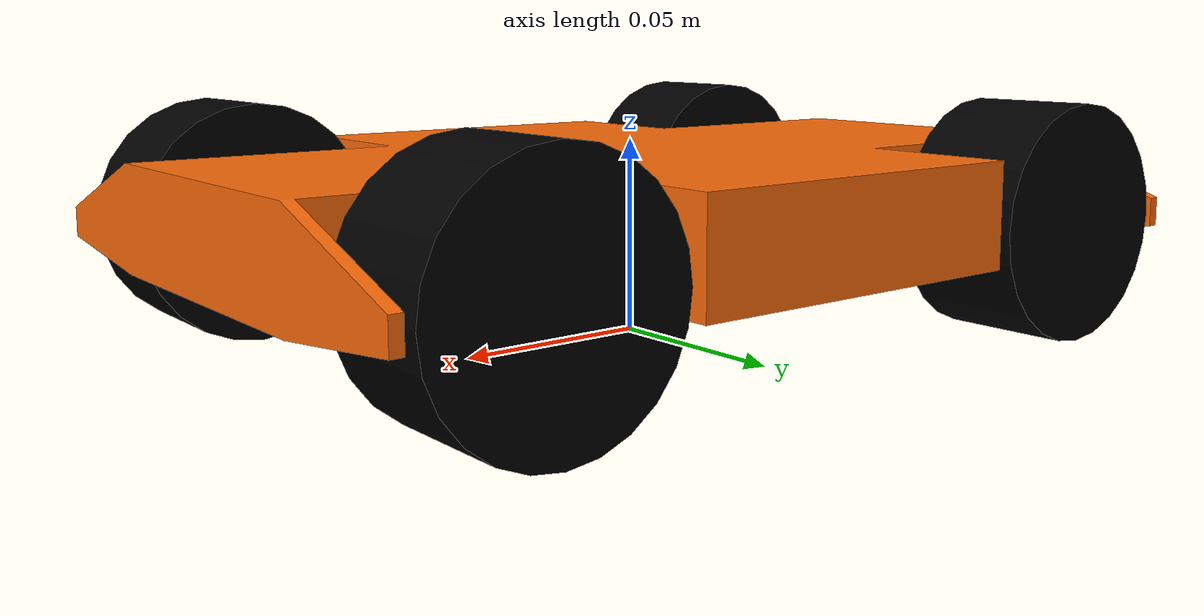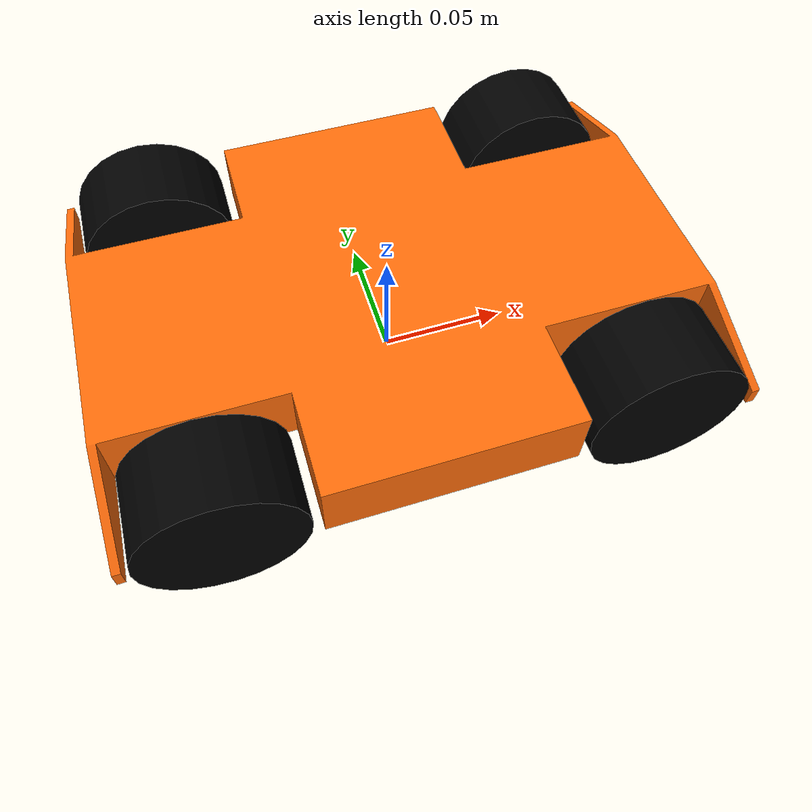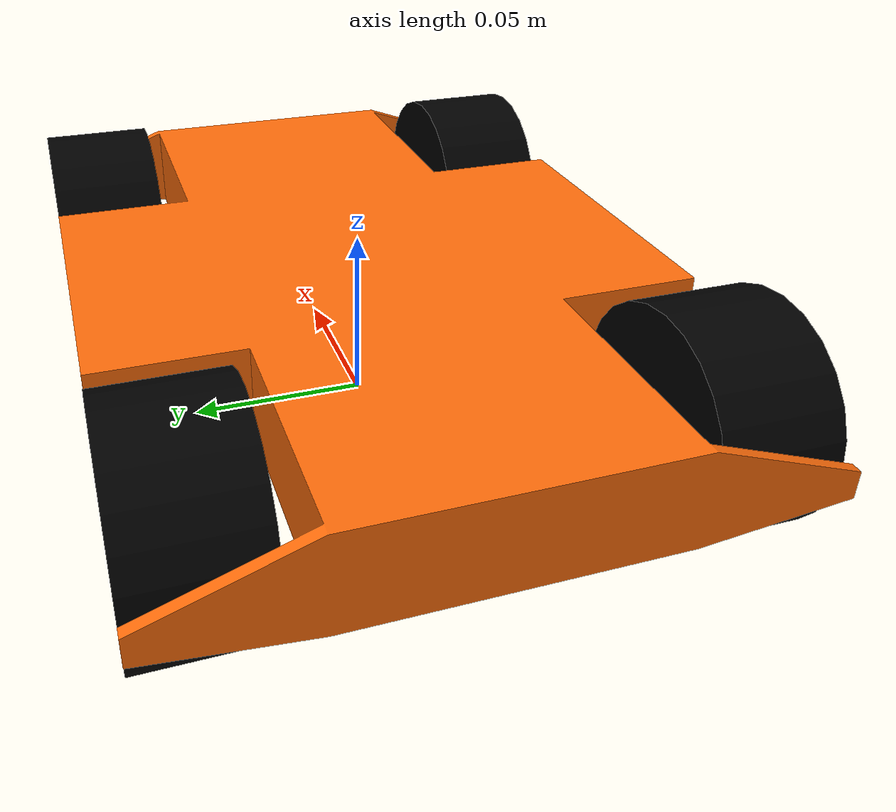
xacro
<?xml version="1.0"?>
<robot name="argon_base" xmlns:xacro="http://ros.org/wiki/xacro">
  <xacro:include filename="$(find argon_description)/urdf/common_properties.xacro"/>

  <xacro:property name="argon_base_center_x" value="0.0" />
  <xacro:property name="argon_base_center_y" value="0.0" />
  <xacro:property name="argon_base_center_z" value="0.035" />

  <xacro:property name="argon_base_wheel_offset_x" value="0.08" />
  <xacro:property name="argon_base_wheel_offset_y" value="0.065" />
  <xacro:property name="argon_base_wheel_offset_z" value="0.005" />
  <xacro:property name="argon_base_wheel_radius" value="0.03" />
  <xacro:property name="argon_base_wheel_length" value="0.032" />

  <link name="base_footprint"/>

  <joint name="base_joint" type="fixed">
    <parent link="base_footprint"/>
    <child link="base_link"/>
    <origin xyz="${argon_base_center_x} ${argon_base_center_y} ${argon_base_center_z}" rpy="0 0 0"/>
  </joint>

  <link name="base_link">
    <visual>
      <origin xyz="0 0 0" rpy="0 0 0" />
      <geometry>
        <mesh filename="package://argon_description/meshes/argon_base.STL" />
      </geometry>
      <material name="orange"/>
    </visual>

    <collision>
      <geometry>
        <mesh filename="package://argon_description/meshes/argon_base.STL" />
      </geometry>
    </collision>

  </link>

  <xacro:macro name="wheel" params="wheel_name offset_x offset_y offset_z">

    <joint name="wheel_${wheel_name}_joint" type="continuous">
      <parent link="base_link"/>
      <child link="wheel_${wheel_name}_link"/>
      <origin xyz="${offset_x} ${offset_y} ${offset_z}" rpy="0 0 0"/>
      <axis xyz="0 1 0"/>
    </joint>

    <link name="wheel_${wheel_name}_link">
      <visual>
        <origin xyz="0 0 0" rpy="${M_PI*0.5} 0 0"/>
        <geometry>
          <cylinder length="${argon_base_wheel_length}" radius="${argon_base_wheel_radius}"/>
        </geometry>
        <material name="black"/>
      </visual>
      <collision>
        <geometry>
          <cylinder length="${argon_base_wheel_length}" radius="${argon_base_wheel_radius}"/>
        </geometry>
      </collision>
    </link>

  </xacro:macro>

  <xacro:wheel wheel_name="front_left" offset_x="${argon_base_wheel_offset_x}" offset_y="${argon_base_wheel_offset_y}" offset_z="${-argon_base_wheel_offset_z}"/>
  <xacro:wheel wheel_name="front_right" offset_x="${argon_base_wheel_offset_x}" offset_y="${-argon_base_wheel_offset_y}" offset_z="${-argon_base_wheel_offset_z}"/>
  <xacro:wheel wheel_name="rear_left" offset_x="${-argon_base_wheel_offset_x}" offset_y="${argon_base_wheel_offset_y}" offset_z="${-argon_base_wheel_offset_z}"/>
  <xacro:wheel wheel_name="rear_right" offset_x="${-argon_base_wheel_offset_x}" offset_y="${-argon_base_wheel_offset_y}" offset_z="${-argon_base_wheel_offset_z}"/>

</robot>

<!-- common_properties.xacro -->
<robot name="xacro_properties" xmlns:xacro="http://ros.org/wiki/xacro">
  <xacro:property name="M_PI" value="3.1415926535897931" />

  <!-- Init colour -->
  <material name="black">
      <color rgba="0.0 0.0 0.0 1.0"/>
  </material>

  <material name="dark">
    <color rgba="0.3 0.3 0.3 1.0"/>
  </material>
  <material name="light_black">
    <color rgba="0.4 0.4 0.4 1.0"/>
  </material>

  <material name="blue">
    <color rgba="0.0 0.0 0.8 1.0"/>
  </material>

  <material name="green">
    <color rgba="0.0 0.8 0.0 1.0"/>
  </material>

  <material name="grey">
    <color rgba="0.5 0.5 0.5 1.0"/>
  </material>

  <material name="orange">
    <color rgba="${255/255} ${108/255} ${10/255} 1.0"/>
  </material>

  <material name="brown">
    <color rgba="${222/255} ${207/255} ${195/255} 1.0"/>
  </material>

  <material name="red">
    <color rgba="0.8 0.0 0.0 1.0"/>
  </material>

  <material name="white">
    <color rgba="1.0 1.0 1.0 1.0"/>
  </material>
</robot>
